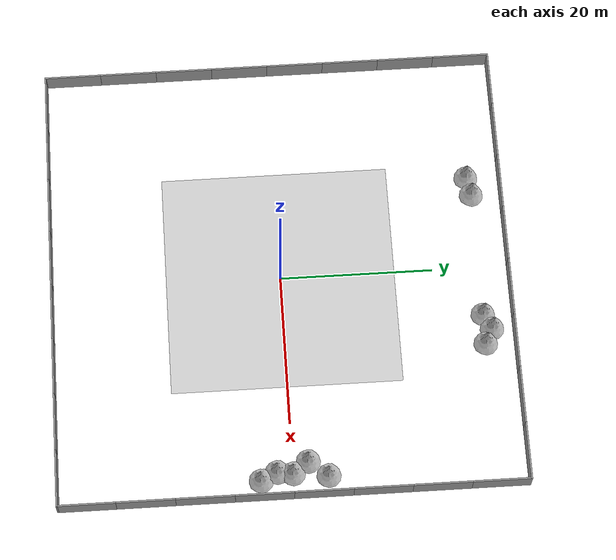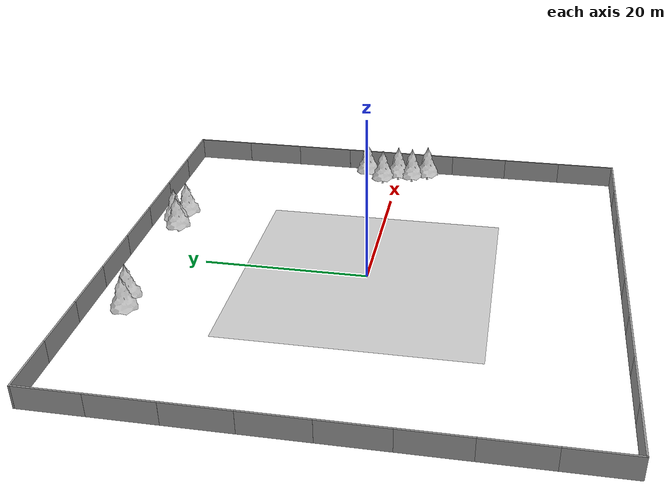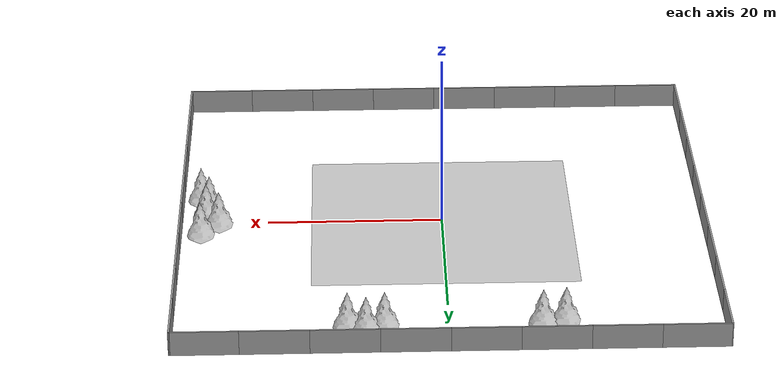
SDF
<sdf version="1.5">
 <world name="default">
  <light type="directional" name="sun">
   <pose>0 0 20 0 0 0</pose>
   <diffuse>0.8 0.8 0.8 1</diffuse>
   <specular>0.2 0.2 0.2 1</specular>
   <attenuation>
    <range>1000</range>
    <constant>0.9</constant>
    <linear>0.01</linear>
    <quadratic>0.001</quadratic>
   </attenuation>
   <direction>-0.5 0.1 -0.9</direction>
  </light>
  <include><uri>model://image_plane</uri></include>
  <include><uri>model://grey_wall</uri><pose>26.25 29.9 0 0 0 0</pose></include>
  <include><uri>model://grey_wall</uri><pose>18.75 29.9 0 0 0 0</pose></include>
  <include><uri>model://grey_wall</uri><pose>11.25 29.9 0 0 0 0</pose></include>
  <include><uri>model://grey_wall</uri><pose>3.75 29.9 0 0 0 0</pose></include>
  <include><uri>model://grey_wall</uri><pose>-26.25 29.9 0 0 0 0</pose></include>
  <include><uri>model://grey_wall</uri><pose>-18.75 29.9 0 0 0 0</pose></include>
  <include><uri>model://grey_wall</uri><pose>-11.25 29.9 0 0 0 0</pose></include>
  <include><uri>model://grey_wall</uri><pose>-3.75 29.9 0 0 0 0</pose></include>
  <include><uri>model://grey_wall</uri><pose>26.25 -29.9 0 0 0 0</pose></include>
  <include><uri>model://grey_wall</uri><pose>18.75 -29.9 0 0 0 0</pose></include>
  <include><uri>model://grey_wall</uri><pose>11.25 -29.9 0 0 0 0</pose></include>
  <include><uri>model://grey_wall</uri><pose>3.75 -29.9 0 0 0 0</pose></include>
  <include><uri>model://grey_wall</uri><pose>-26.25 -29.9 0 0 0 0</pose></include>
  <include><uri>model://grey_wall</uri><pose>-18.75 -29.9 0 0 0 0</pose></include>
  <include><uri>model://grey_wall</uri><pose>-11.25 -29.9 0 0 0 0</pose></include>
  <include><uri>model://grey_wall</uri><pose>-3.75 -29.9 0 0 0 0</pose></include>
  <include><uri>model://grey_wall</uri><pose>29.9 26.25 0 0 0 1.57</pose></include>
  <include><uri>model://grey_wall</uri><pose>29.9 18.75 0 0 0 1.57</pose></include>
  <include><uri>model://grey_wall</uri><pose>29.9 11.25 0 0 0 1.57</pose></include>
  <include><uri>model://grey_wall</uri><pose>29.9 3.75 0 0 0 1.57</pose></include>
  <include><uri>model://grey_wall</uri><pose>29.9 -26.25 0 0 0 1.57</pose></include>
  <include><uri>model://grey_wall</uri><pose>29.9 -18.75 0 0 0 1.57</pose></include>
  <include><uri>model://grey_wall</uri><pose>29.9 -11.25 0 0 0 1.57</pose></include>
  <include><uri>model://grey_wall</uri><pose>29.9 -3.75 0 0 0 1.57</pose></include>
  <include><uri>model://grey_wall</uri><pose>-29.9 26.25 0 0 0 1.57</pose></include>
  <include><uri>model://grey_wall</uri><pose>-29.9 18.75 0 0 0 1.57</pose></include>
  <include><uri>model://grey_wall</uri><pose>-29.9 11.25 0 0 0 1.57</pose></include>
  <include><uri>model://grey_wall</uri><pose>-29.9 3.75 0 0 0 1.57</pose></include>
  <include><uri>model://grey_wall</uri><pose>-29.9 -26.25 0 0 0 1.57</pose></include>
  <include><uri>model://grey_wall</uri><pose>-29.9 -18.75 0 0 0 1.57</pose></include>
  <include><uri>model://grey_wall</uri><pose>-29.9 -11.25 0 0 0 1.57</pose></include>
  <include><uri>model://grey_wall</uri><pose>-29.9 -3.75 0 0 0 1.57</pose></include>
  <include><uri>model://pine_tree</uri><pose>7 26 0 0 0 0</pose></include>
  <include><uri>model://pine_tree</uri><pose>9 27 0 0 0 0</pose></include>
  <include><uri>model://pine_tree</uri><pose>11 26 0 0 0 0</pose></include>
  <include><uri>model://pine_tree</uri><pose>-10.0 26 0 0 0 0</pose></include>
  <include><uri>model://pine_tree</uri><pose>-12.5 25.5 0 0 0 0</pose></include>
  <include><uri>model://pine_tree</uri><pose>27 0 0 0 0 0</pose></include>
  <include><uri>model://pine_tree</uri><pose>25.5 2 0 0 0 0</pose></include>
  <include><uri>model://pine_tree</uri><pose>26.7 -2 0 0 0 0</pose></include>
  <include><uri>model://pine_tree</uri><pose>27.5 4.5 0 0 0 0</pose></include>
  <include><uri>model://pine_tree</uri><pose>27.7 -4.1 0 0 0 0</pose></include>
 </world>
</sdf>

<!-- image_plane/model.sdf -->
<sdf version="1.5">
  <model name="image_plane">
    <static>true</static>
    <link name="link">
      <collision name="collision">
        <geometry>
          <plane>
            <normal>0 0 1</normal>
            <size>30 30</size>
          </plane>
        </geometry>
        <surface>
          <friction>
            <ode>
              <mu>100</mu>
              <mu2>50</mu2>
            </ode>
          </friction>
        </surface>
      </collision>
      <visual name="visual">
        <cast_shadows>false</cast_shadows>
        <geometry>
          <plane>
            <normal>0 0 1</normal>
            <size>30 30</size>
          </plane>
        </geometry>
        <material>
          <script>
            <uri>model://image_plane/materials/scripts</uri>
            <uri>model://image_plane/materials/textures</uri>
            <name>image_plane</name>
          </script>
        </material>
      </visual>
    </link>
  </model>
</sdf>

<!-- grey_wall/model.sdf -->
<sdf version="1.5">
  <model name="grey_wall">
    <static>true</static>
    <link name="link">
      <pose>0 0 1.4 0 0 0</pose>
      <collision name="collision">
        <geometry>
          <box>
            <size>7.5 0.2 2.8</size>
          </box>
        </geometry>
      </collision>
      <visual name="visual">
        <cast_shadows>false</cast_shadows>
        <geometry>
          <box>
            <size>7.5 0.2 2.8</size>
          </box>
        </geometry>
        <material>
          <script>
            <uri>model://../model_source/models/grey_wall/materials/scripts</uri>
            <uri>model://../model_source/models/grey_wall/materials/textures</uri>
            <name>vrc/grey_wall</name>
          </script>
        </material>
      </visual>
    </link>
  </model>
</sdf>

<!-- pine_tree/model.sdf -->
<sdf version="1.6">
  <model name="pine_tree">
    <static>true</static>
    <link name="link">
      <collision name="collision">
        <geometry>
          <mesh>
            <uri>file://isr-testbed/pine_tree/meshes/pine_tree.dae</uri>
          </mesh>
        </geometry>
      </collision>
      <visual name="branch">
        <geometry>
          <mesh>
            <uri>file://isr-testbed/pine_tree/meshes/pine_tree.dae</uri>
            <submesh>
              <name>Branch</name>
            </submesh>
          </mesh>
        </geometry>
        <material>
          <script>
            <uri>file://isr-testbed/pine_tree/materials/scripts/</uri>
            <uri>file://isr-testbed/pine_tree/materials/textures/</uri>
            <name>PineTree/Branch</name>
          </script>
        </material>
      </visual>
      <visual name="bark">
        <geometry>
          <mesh>
            <uri>file://isr-testbed/pine_tree/meshes/pine_tree.dae</uri>
            <submesh>
              <name>Bark</name>
            </submesh>
          </mesh>
        </geometry>
        <material>
          <script>
            <uri>file://isr-testbed/pine_tree/materials/scripts/</uri>
            <uri>file://isr-testbed/pine_tree/materials/textures/</uri>
            <name>PineTree/Bark</name>
          </script>
        </material>
      </visual>
    </link>
  </model>
</sdf>
